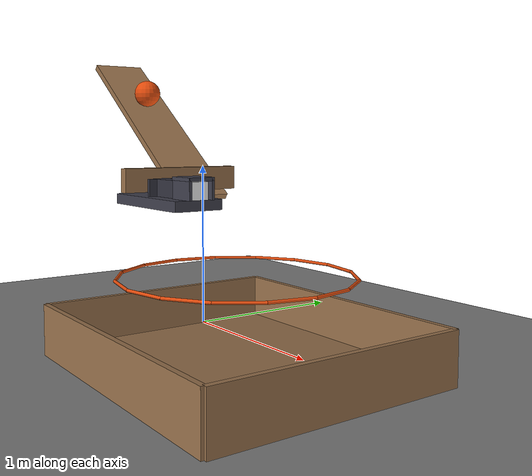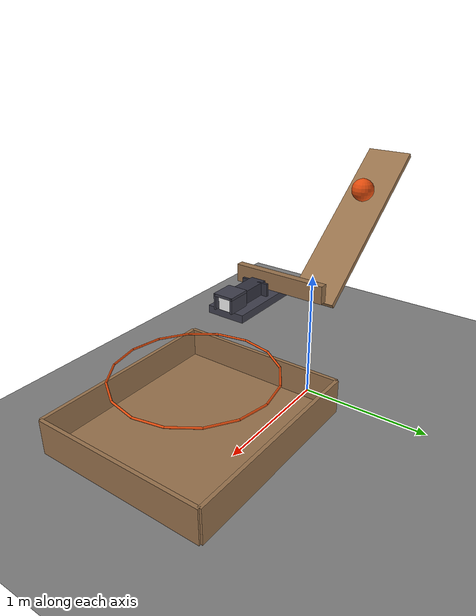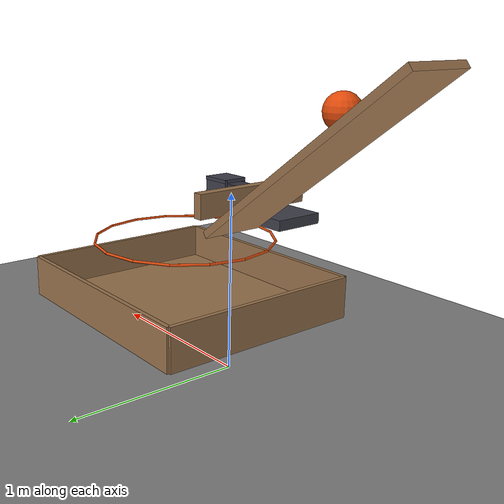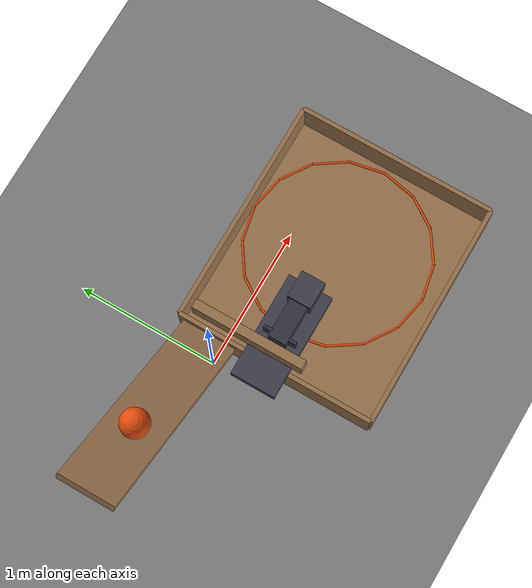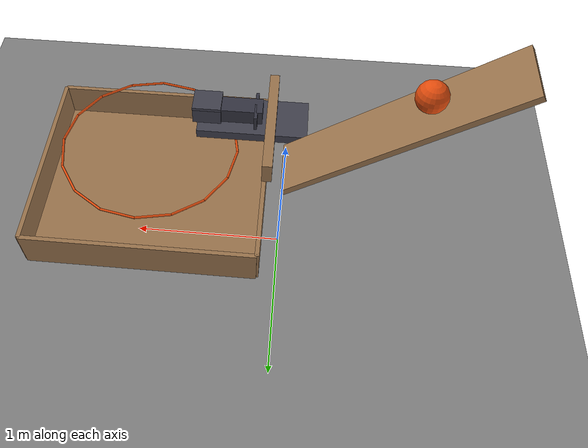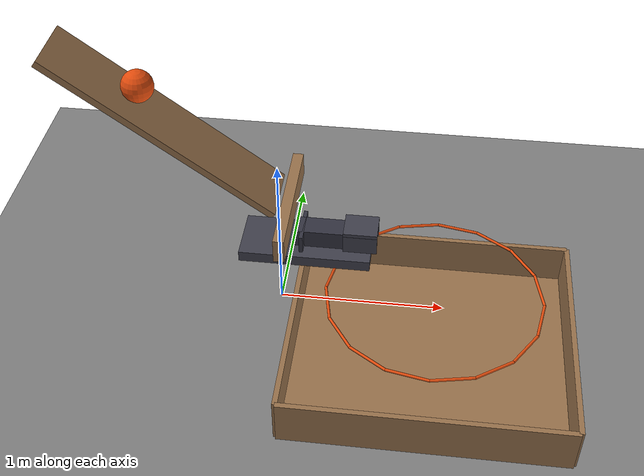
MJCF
<mujoco model="ramp_paddle_slider_drop">
  <compiler angle="radian"/>
  <option timestep="0.002"/>
  <worldbody>
    <geom name="floor" type="plane" size="6 6 0.1" friction="0.8 0.005 0.002"/>
    <body name="ramp">
      <geom name="ramp" type="box" pos="-0.6 0 1.25" size="0.75 0.18 0.02" euler="0 0.643501 0" friction="0.6 0.001 0.0005" solref="0.01 1" rgba="0.6 0.45 0.3 1"/>
    </body>
    <body name="ball" pos="-0.734 0 1.488">
      <freejoint/>
      <geom name="ball" type="sphere" pos="0 0 0" size="0.09" mass="0.9" condim="6" friction="0.6 0.001 0.0005" solref="0.01 1" rgba="0.9 0.3 0.05 1"/>
    </body>
    <body name="paddle" pos="0.1 -0.6 0.93">
      <joint name="paddle_hinge" type="hinge" pos="0 0 0" axis="0 0 1" limited="true" range="-0.663225 0" damping="0.03"/>
      <geom name="paddle" type="box" pos="0 0.375 0" size="0.03 0.375 0.07" mass="0.25" friction="0.3 0.005 0.0001" solref="0.01 1" rgba="0.6 0.45 0.3 1"/>
    </body>
    <body name="ledge">
      <geom name="ledge" type="box" pos="0.22 -0.38 0.81" size="0.35 0.15 0.03" friction="0.25 0.005 0.0001" solref="0.01 1" rgba="0.25 0.25 0.3 1"/>
    </body>
    <body name="slider" pos="0.3 -0.38 0.89">
      <freejoint/>
      <geom name="slider" type="box" pos="0 0 0" size="0.14 0.06 0.05" mass="0.45" friction="0.25 0.005 0.0001" solref="0.01 1" rgba="0.2 0.2 0.25 1"/>
      <geom name="slider shoulder" type="box" pos="-0.1 0 -1.11022e-16" size="0.01 0.11 0.05" mass="0.02" friction="0.15 0.005 0.0001" solref="0.01 1" rgba="0.2 0.2 0.25 1"/>
    </body>
    <body name="left slider guide">
      <geom name="left slider guide" type="box" pos="0.51 -0.309 0.9" size="0.09 0.008 0.06" friction="0.15 0.005 0.0001" solref="0.01 1" rgba="0.25 0.25 0.3 1"/>
    </body>
    <body name="right slider guide">
      <geom name="right slider guide" type="box" pos="0.51 -0.451 0.9" size="0.09 0.008 0.06" friction="0.15 0.005 0.0001" solref="0.01 1" rgba="0.25 0.25 0.3 1"/>
    </body>
    <body name="slider keeper">
      <geom name="slider keeper" type="box" pos="0.51 -0.38 0.954" size="0.09 0.08 0.01" friction="0.15 0.005 0.0001" solref="0.01 1" rgba="0.25 0.25 0.3 1"/>
    </body>
    <body name="block" pos="0.53 -0.38 0.89">
      <freejoint/>
      <geom name="block" type="box" pos="0 0 0" size="0.05 0.05 0.05" mass="0.12" friction="0.45 0.01 0.002" solref="0.01 1" rgba="0.95 0.95 0.95 1"/>
    </body>
    <body name="hoop">
      <geom name="hoop_00" type="capsule" size="0.008" fromto="1.538 -0.38 0.48 1.49172 -0.147328 0.48" solref="0.01 1" rgba="0.9 0.3 0.05 1"/>
      <geom name="hoop_01" type="capsule" size="0.008" fromto="1.49172 -0.147328 0.48 1.35992 0.0499209 0.48" solref="0.01 1" rgba="0.9 0.3 0.05 1"/>
      <geom name="hoop_02" type="capsule" size="0.008" fromto="1.35992 0.0499209 0.48 1.16267 0.181719 0.48" solref="0.01 1" rgba="0.9 0.3 0.05 1"/>
      <geom name="hoop_03" type="capsule" size="0.008" fromto="1.16267 0.181719 0.48 0.93 0.228 0.48" solref="0.01 1" rgba="0.9 0.3 0.05 1"/>
      <geom name="hoop_04" type="capsule" size="0.008" fromto="0.93 0.228 0.48 0.697328 0.181719 0.48" solref="0.01 1" rgba="0.9 0.3 0.05 1"/>
      <geom name="hoop_05" type="capsule" size="0.008" fromto="0.697328 0.181719 0.48 0.500079 0.0499209 0.48" solref="0.01 1" rgba="0.9 0.3 0.05 1"/>
      <geom name="hoop_06" type="capsule" size="0.008" fromto="0.500079 0.0499209 0.48 0.368281 -0.147328 0.48" solref="0.01 1" rgba="0.9 0.3 0.05 1"/>
      <geom name="hoop_07" type="capsule" size="0.008" fromto="0.368281 -0.147328 0.48 0.322 -0.38 0.48" solref="0.01 1" rgba="0.9 0.3 0.05 1"/>
      <geom name="hoop_08" type="capsule" size="0.008" fromto="0.322 -0.38 0.48 0.368281 -0.612672 0.48" solref="0.01 1" rgba="0.9 0.3 0.05 1"/>
      <geom name="hoop_09" type="capsule" size="0.008" fromto="0.368281 -0.612672 0.48 0.500079 -0.809921 0.48" solref="0.01 1" rgba="0.9 0.3 0.05 1"/>
      <geom name="hoop_10" type="capsule" size="0.008" fromto="0.500079 -0.809921 0.48 0.697328 -0.941719 0.48" solref="0.01 1" rgba="0.9 0.3 0.05 1"/>
      <geom name="hoop_11" type="capsule" size="0.008" fromto="0.697328 -0.941719 0.48 0.93 -0.988 0.48" solref="0.01 1" rgba="0.9 0.3 0.05 1"/>
      <geom name="hoop_12" type="capsule" size="0.008" fromto="0.93 -0.988 0.48 1.16267 -0.941719 0.48" solref="0.01 1" rgba="0.9 0.3 0.05 1"/>
      <geom name="hoop_13" type="capsule" size="0.008" fromto="1.16267 -0.941719 0.48 1.35992 -0.809921 0.48" solref="0.01 1" rgba="0.9 0.3 0.05 1"/>
      <geom name="hoop_14" type="capsule" size="0.008" fromto="1.35992 -0.809921 0.48 1.49172 -0.612672 0.48" solref="0.01 1" rgba="0.9 0.3 0.05 1"/>
      <geom name="hoop_15" type="capsule" size="0.008" fromto="1.49172 -0.612672 0.48 1.538 -0.38 0.48" solref="0.01 1" rgba="0.9 0.3 0.05 1"/>
    </body>
    <body name="box">
      <geom name="box_base" type="box" pos="0.93 -0.38 0.02" size="0.8 0.7 0.02" friction="0.9 0.02 0.01" solref="0.01 1" rgba="0.6 0.45 0.3 1"/>
      <geom name="box_near_wall" type="box" pos="0.13 -0.38 0.14" size="0.015 0.7 0.14" friction="0.9 0.02 0.01" solref="0.01 1" rgba="0.6 0.45 0.3 1"/>
      <geom name="box_far_wall" type="box" pos="1.73 -0.38 0.14" size="0.015 0.7 0.14" friction="0.9 0.02 0.01" solref="0.01 1" rgba="0.6 0.45 0.3 1"/>
      <geom name="box_left_wall" type="box" pos="0.93 0.32 0.14" size="0.8 0.015 0.14" friction="0.9 0.02 0.01" solref="0.01 1" rgba="0.6 0.45 0.3 1"/>
      <geom name="box_right_wall" type="box" pos="0.93 -1.08 0.14" size="0.8 0.015 0.14" friction="0.9 0.02 0.01" solref="0.01 1" rgba="0.6 0.45 0.3 1"/>
    </body>
  </worldbody>
  <keyframe>
    <key name="start" qpos="-0.734 0 1.488 1 0 0 0 0 0.3 -0.38 0.89 1 0 0 0 0.53 -0.38 0.89 1 0 0 0" qvel="0 0 0 0 0 0 0 0 0 0 0 0 0 0 0 0 0 0 0"/>
  </keyframe>
</mujoco>
